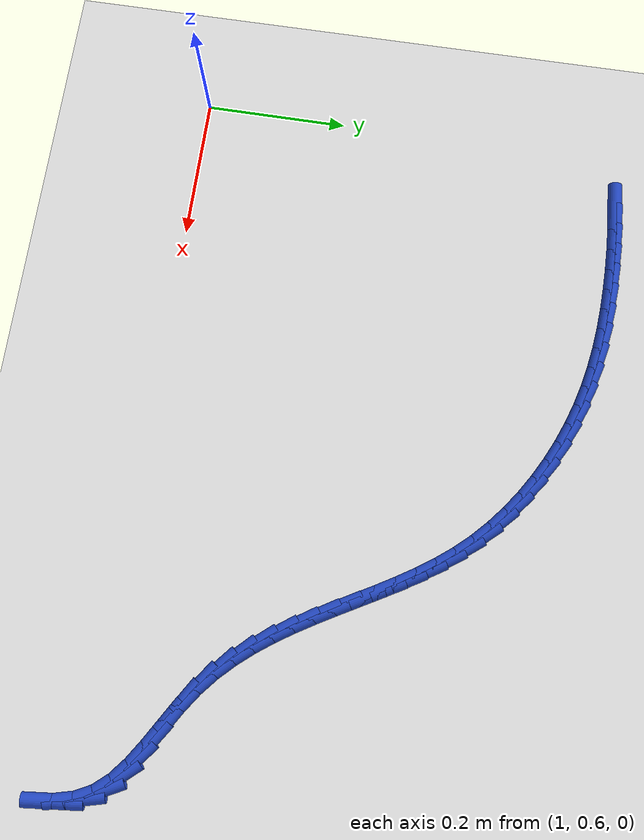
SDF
<sdf version="1.6">
 <world name="default">
  <model name="ground_plane">
   <static>1</static>
   <link name="link">
    <collision name="collision">
     <geometry><plane><normal>0 0 1</normal><size>100 100</size></plane></geometry>
     <surface><friction><ode><mu>100</mu><mu2>50</mu2></ode></friction></surface>
    </collision>
    <visual name="visual">
     <cast_shadows>0</cast_shadows>
     <geometry><plane><normal>0 0 1</normal><size>100 100</size></plane></geometry>
     <material>
      <script><uri>file://media/materials/scripts/gazebo.material</uri><name>Gazebo/WhiteGlow</name></script>
     </material>
    </visual>
   </link>
  </model>
  <model name="line">
   <link name="link_59">
    <pose>1.081388097800081 1.2055630159555188 0.01 0 1.57 0.08266332678488861</pose>
    <collision name="collision">
     <geometry><cylinder><radius>0.01</radius><length>0.08</length></cylinder></geometry>
    </collision>
    <visual name="visual">
     <material>
      <script><name>Gazebo/Blue</name><uri>file://media/materials/scripts/gazebo.material</uri></script>
     </material>
     <geometry><cylinder><radius>0.01</radius><length>0.08</length></cylinder></geometry>
    </visual>
   </link>
   <link name="link_60">
    <pose>1.1122554132911793 1.2081204387472564 0.01 0 1.57 0.0492057576129428</pose>
    <collision name="collision">
     <geometry><cylinder><radius>0.01</radius><length>0.08</length></cylinder></geometry>
    </collision>
    <visual name="visual">
     <material>
      <script><name>Gazebo/Blue</name><uri>file://media/materials/scripts/gazebo.material</uri></script>
     </material>
     <geometry><cylinder><radius>0.01</radius><length>0.08</length></cylinder></geometry>
    </visual>
   </link>
   <link name="link_61">
    <pose>1.1430983092365512 1.2096393128431242 0.01 0 1.57 0.018725478846581253</pose>
    <collision name="collision">
     <geometry><cylinder><radius>0.01</radius><length>0.08</length></cylinder></geometry>
    </collision>
    <visual name="visual">
     <material>
      <script><name>Gazebo/Blue</name><uri>file://media/materials/scripts/gazebo.material</uri></script>
     </material>
     <geometry><cylinder><radius>0.01</radius><length>0.08</length></cylinder></geometry>
    </visual>
   </link>
   <link name="link_62">
    <pose>1.173782432046905 1.210213954902151 0.01 0 1.57 -0.009177796634765499</pose>
    <collision name="collision">
     <geometry><cylinder><radius>0.01</radius><length>0.08</length></cylinder></geometry>
    </collision>
    <visual name="visual">
     <material>
      <script><name>Gazebo/Blue</name><uri>file://media/materials/scripts/gazebo.material</uri></script>
     </material>
     <geometry><cylinder><radius>0.01</radius><length>0.08</length></cylinder></geometry>
    </visual>
   </link>
   <link name="link_63">
    <pose>1.2041758548206851 1.2099350024166173 0.01 0 1.57 -0.03832187731914051</pose>
    <collision name="collision">
     <geometry><cylinder><radius>0.01</radius><length>0.08</length></cylinder></geometry>
    </collision>
    <visual name="visual">
     <material>
      <script><name>Gazebo/Blue</name><uri>file://media/materials/scripts/gazebo.material</uri></script>
     </material>
     <geometry><cylinder><radius>0.01</radius><length>0.08</length></cylinder></geometry>
    </visual>
   </link>
   <link name="link_64">
    <pose>1.2342191849503243 1.2087831216788472 0.01 0 1.57 -0.07290484373197678</pose>
    <collision name="collision">
     <geometry><cylinder><radius>0.01</radius><length>0.08</length></cylinder></geometry>
    </collision>
    <visual name="visual">
     <material>
      <script><name>Gazebo/Blue</name><uri>file://media/materials/scripts/gazebo.material</uri></script>
     </material>
     <geometry><cylinder><radius>0.01</radius><length>0.08</length></cylinder></geometry>
    </visual>
   </link>
   <link name="link_65">
    <pose>1.2639362843348296 1.20661275457769 0.01 0 1.57 -0.11309248596938216</pose>
    <collision name="collision">
     <geometry><cylinder><radius>0.01</radius><length>0.08</length></cylinder></geometry>
    </collision>
    <visual name="visual">
     <material>
      <script><name>Gazebo/Blue</name><uri>file://media/materials/scripts/gazebo.material</uri></script>
     </material>
     <geometry><cylinder><radius>0.01</radius><length>0.08</length></cylinder></geometry>
    </visual>
   </link>
   <link name="link_66">
    <pose>1.2933555983820895 1.203271393820525 0.01 0 1.57 -0.1586842238111268</pose>
    <collision name="collision">
     <geometry><cylinder><radius>0.01</radius><length>0.08</length></cylinder></geometry>
    </collision>
    <visual name="visual">
     <material>
      <script><name>Gazebo/Blue</name><uri>file://media/materials/scripts/gazebo.material</uri></script>
     </material>
     <geometry><cylinder><radius>0.01</radius><length>0.08</length></cylinder></geometry>
    </visual>
   </link>
   <link name="link_67">
    <pose>1.3225055724999917 1.1986065321147334 0.01 0 1.57 -0.20930895600061797</pose>
    <collision name="collision">
     <geometry><cylinder><radius>0.01</radius><length>0.08</length></cylinder></geometry>
    </collision>
    <visual name="visual">
     <material>
      <script><name>Gazebo/Blue</name><uri>file://media/materials/scripts/gazebo.material</uri></script>
     </material>
     <geometry><cylinder><radius>0.01</radius><length>0.08</length></cylinder></geometry>
    </visual>
   </link>
   <link name="link_68">
    <pose>1.3514146520964248 1.1924656621676955 0.01 0 1.57 -0.2643771519026189</pose>
    <collision name="collision">
     <geometry><cylinder><radius>0.01</radius><length>0.08</length></cylinder></geometry>
    </collision>
    <visual name="visual">
     <material>
      <script><name>Gazebo/Blue</name><uri>file://media/materials/scripts/gazebo.material</uri></script>
     </material>
     <geometry><cylinder><radius>0.01</radius><length>0.08</length></cylinder></geometry>
    </visual>
   </link>
   <link name="link_69">
    <pose>1.3801099912257777 1.184697433638929 0.01 0 1.57 -0.32176665142718436</pose>
    <collision name="collision">
     <geometry><cylinder><radius>0.01</radius><length>0.08</length></cylinder></geometry>
    </collision>
    <visual name="visual">
     <material>
      <script><name>Gazebo/Blue</name><uri>file://media/materials/scripts/gazebo.material</uri></script>
     </material>
     <geometry><cylinder><radius>0.01</radius><length>0.08</length></cylinder></geometry>
    </visual>
   </link>
   <link name="link_70">
    <pose>1.4085414026123495 1.1752197879947905 0.01 0 1.57 -0.3793601810932405</pose>
    <collision name="collision">
     <geometry><cylinder><radius>0.01</radius><length>0.08</length></cylinder></geometry>
    </collision>
    <visual name="visual">
     <material>
      <script><name>Gazebo/Blue</name><uri>file://media/materials/scripts/gazebo.material</uri></script>
     </material>
     <geometry><cylinder><radius>0.01</radius><length>0.08</length></cylinder></geometry>
    </visual>
   </link>
   <link name="link_71">
    <pose>1.436538900280601 1.1640579970043168 0.01 0 1.57 -0.4376032993258086</pose>
    <collision name="collision">
     <geometry><cylinder><radius>0.01</radius><length>0.08</length></cylinder></geometry>
    </collision>
    <visual name="visual">
     <material>
      <script><name>Gazebo/Blue</name><uri>file://media/materials/scripts/gazebo.material</uri></script>
     </material>
     <geometry><cylinder><radius>0.01</radius><length>0.08</length></cylinder></geometry>
    </visual>
   </link>
   <link name="link_72">
    <pose>1.4639222023772234 1.1512465567409733 0.01 0 1.57 -0.4971294727617896</pose>
    <collision name="collision">
     <geometry><cylinder><radius>0.01</radius><length>0.08</length></cylinder></geometry>
    </collision>
    <visual name="visual">
     <material>
      <script><name>Gazebo/Blue</name><uri>file://media/materials/scripts/gazebo.material</uri></script>
     </material>
     <geometry><cylinder><radius>0.01</radius><length>0.08</length></cylinder></geometry>
    </visual>
   </link>
   <link name="link_73">
    <pose>1.490511027048909 1.1368199632782268 0.01 0 1.57 -0.5585560715792379</pose>
    <collision name="collision">
     <geometry><cylinder><radius>0.01</radius><length>0.08</length></cylinder></geometry>
    </collision>
    <visual name="visual">
     <material>
      <script><name>Gazebo/Blue</name><uri>file://media/materials/scripts/gazebo.material</uri></script>
     </material>
     <geometry><cylinder><radius>0.01</radius><length>0.08</length></cylinder></geometry>
    </visual>
   </link>
   <link name="link_74">
    <pose>1.5161250924423484 1.1208127126895429 0.01 0 1.57 -0.6224842481481458</pose>
    <collision name="collision">
     <geometry><cylinder><radius>0.01</radius><length>0.08</length></cylinder></geometry>
    </collision>
    <visual name="visual">
     <material>
      <script><name>Gazebo/Blue</name><uri>file://media/materials/scripts/gazebo.material</uri></script>
     </material>
     <geometry><cylinder><radius>0.01</radius><length>0.08</length></cylinder></geometry>
    </visual>
   </link>
   <link name="link_75">
    <pose>1.540584116704232 1.1032593010483884 0.01 0 1.57 -0.6894917771300096</pose>
    <collision name="collision">
     <geometry><cylinder><radius>0.01</radius><length>0.08</length></cylinder></geometry>
    </collision>
    <visual name="visual">
     <material>
      <script><name>Gazebo/Blue</name><uri>file://media/materials/scripts/gazebo.material</uri></script>
     </material>
     <geometry><cylinder><radius>0.01</radius><length>0.08</length></cylinder></geometry>
    </visual>
   </link>
   <link name="link_76">
    <pose>1.5637078179812511 1.0841942244282288 0.01 0 1.57 -0.7601166645345392</pose>
    <collision name="collision">
     <geometry><cylinder><radius>0.01</radius><length>0.08</length></cylinder></geometry>
    </collision>
    <visual name="visual">
     <material>
      <script><name>Gazebo/Blue</name><uri>file://media/materials/scripts/gazebo.material</uri></script>
     </material>
     <geometry><cylinder><radius>0.01</radius><length>0.08</length></cylinder></geometry>
    </visual>
   </link>
   <link name="link_77">
    <pose>1.5853159144200974 1.0636519789025307 0.01 0 1.57 -0.834619941402077</pose>
    <collision name="collision">
     <geometry><cylinder><radius>0.01</radius><length>0.08</length></cylinder></geometry>
    </collision>
    <visual name="visual">
     <material>
      <script><name>Gazebo/Blue</name><uri>file://media/materials/scripts/gazebo.material</uri></script>
     </material>
     <geometry><cylinder><radius>0.01</radius><length>0.08</length></cylinder></geometry>
    </visual>
   </link>
   <link name="link_78">
    <pose>1.60523414127643 1.0416696657538007 0.01 0 1.57 -0.9057533383602213</pose>
    <collision name="collision">
     <geometry><cylinder><radius>0.01</radius><length>0.08</length></cylinder></geometry>
    </collision>
    <visual name="visual">
     <material>
      <script><name>Gazebo/Blue</name><uri>file://media/materials/scripts/gazebo.material</uri></script>
     </material>
     <geometry><cylinder><radius>0.01</radius><length>0.08</length></cylinder></geometry>
    </visual>
   </link>
   <link name="link_79">
    <pose>1.6235010295329835 1.0183765197716845 0.01 0 1.57 -0.9637492921909827</pose>
    <collision name="collision">
     <geometry><cylinder><radius>0.01</radius><length>0.08</length></cylinder></geometry>
    </collision>
    <visual name="visual">
     <material>
      <script><name>Gazebo/Blue</name><uri>file://media/materials/scripts/gazebo.material</uri></script>
     </material>
     <geometry><cylinder><radius>0.01</radius><length>0.08</length></cylinder></geometry>
    </visual>
   </link>
   <link name="link_80">
    <pose>1.6404199066402994 0.9940164238526844 0.01 0 1.57 -1.0077599899585696</pose>
    <collision name="collision">
     <geometry><cylinder><radius>0.01</radius><length>0.08</length></cylinder></geometry>
    </collision>
    <visual name="visual">
     <material>
      <script><name>Gazebo/Blue</name><uri>file://media/materials/scripts/gazebo.material</uri></script>
     </material>
     <geometry><cylinder><radius>0.01</radius><length>0.08</length></cylinder></geometry>
    </visual>
   </link>
   <link name="link_81">
    <pose>1.6563106733877127 0.9688404366004896 0.01 0 1.57 -1.0378926720717532</pose>
    <collision name="collision">
     <geometry><cylinder><radius>0.01</radius><length>0.08</length></cylinder></geometry>
    </collision>
    <visual name="visual">
     <material>
      <script><name>Gazebo/Blue</name><uri>file://media/materials/scripts/gazebo.material</uri></script>
     </material>
     <geometry><cylinder><radius>0.01</radius><length>0.08</length></cylinder></geometry>
    </visual>
   </link>
   <link name="link_82">
    <pose>1.6714932305645602 0.9430996166187912 0.01 0 1.57 -1.0543768160414884</pose>
    <collision name="collision">
     <geometry><cylinder><radius>0.01</radius><length>0.08</length></cylinder></geometry>
    </collision>
    <visual name="visual">
     <material>
      <script><name>Gazebo/Blue</name><uri>file://media/materials/scripts/gazebo.material</uri></script>
     </material>
     <geometry><cylinder><radius>0.01</radius><length>0.08</length></cylinder></geometry>
    </visual>
   </link>
   <link name="link_83">
    <pose>1.6862874789601767 0.9170450225112783 0.01 0 1.57 -1.0573936943203923</pose>
    <collision name="collision">
     <geometry><cylinder><radius>0.01</radius><length>0.08</length></cylinder></geometry>
    </collision>
    <visual name="visual">
     <material>
      <script><name>Gazebo/Blue</name><uri>file://media/materials/scripts/gazebo.material</uri></script>
     </material>
     <geometry><cylinder><radius>0.01</radius><length>0.08</length></cylinder></geometry>
    </visual>
   </link>
   <link name="link_84">
    <pose>1.7010133193638994 0.8909277128816412 0.01 0 1.57 -1.0469882338466296</pose>
    <collision name="collision">
     <geometry><cylinder><radius>0.01</radius><length>0.08</length></cylinder></geometry>
    </collision>
    <visual name="visual">
     <material>
      <script><name>Gazebo/Blue</name><uri>file://media/materials/scripts/gazebo.material</uri></script>
     </material>
     <geometry><cylinder><radius>0.01</radius><length>0.08</length></cylinder></geometry>
    </visual>
   </link>
   <link name="link_85">
    <pose>1.7159906525650641 0.8649987463335692 0.01 0 1.57 -1.0230536762383615</pose>
    <collision name="collision">
     <geometry><cylinder><radius>0.01</radius><length>0.08</length></cylinder></geometry>
    </collision>
    <visual name="visual">
     <material>
      <script><name>Gazebo/Blue</name><uri>file://media/materials/scripts/gazebo.material</uri></script>
     </material>
     <geometry><cylinder><radius>0.01</radius><length>0.08</length></cylinder></geometry>
    </visual>
   </link>
   <link name="link_86">
    <pose>1.7315393793530063 0.8395091814707529 0.01 0 1.57 -0.9853864887902611</pose>
    <collision name="collision">
     <geometry><cylinder><radius>0.01</radius><length>0.08</length></cylinder></geometry>
    </collision>
    <visual name="visual">
     <material>
      <script><name>Gazebo/Blue</name><uri>file://media/materials/scripts/gazebo.material</uri></script>
     </material>
     <geometry><cylinder><radius>0.01</radius><length>0.08</length></cylinder></geometry>
    </visual>
   </link>
   <link name="link_87">
    <pose>1.747979400517062 0.8147100768968821 0.01 0 1.57 -0.933818010572184</pose>
    <collision name="collision">
     <geometry><cylinder><radius>0.01</radius><length>0.08</length></cylinder></geometry>
    </collision>
    <visual name="visual">
     <material>
      <script><name>Gazebo/Blue</name><uri>file://media/materials/scripts/gazebo.material</uri></script>
     </material>
     <geometry><cylinder><radius>0.01</radius><length>0.08</length></cylinder></geometry>
    </visual>
   </link>
   <link name="link_88">
    <pose>1.7656306168465674 0.7908524912156464 0.01 0 1.57 -0.8684306845122894</pose>
    <collision name="collision">
     <geometry><cylinder><radius>0.01</radius><length>0.08</length></cylinder></geometry>
    </collision>
    <visual name="visual">
     <material>
      <script><name>Gazebo/Blue</name><uri>file://media/materials/scripts/gazebo.material</uri></script>
     </material>
     <geometry><cylinder><radius>0.01</radius><length>0.08</length></cylinder></geometry>
    </visual>
   </link>
   <link name="link_89">
    <pose>1.784812929130858 0.7681874830307354 0.01 0 1.57 -0.7898488374950351</pose>
    <collision name="collision">
     <geometry><cylinder><radius>0.01</radius><length>0.08</length></cylinder></geometry>
    </collision>
    <visual name="visual">
     <material>
      <script><name>Gazebo/Blue</name><uri>file://media/materials/scripts/gazebo.material</uri></script>
     </material>
     <geometry><cylinder><radius>0.01</radius><length>0.08</length></cylinder></geometry>
    </visual>
   </link>
   <link name="link_90">
    <pose>1.8058462381592704 0.7469661109458396 0.01 0 1.57 -0.6995471476976406</pose>
    <collision name="collision">
     <geometry><cylinder><radius>0.01</radius><length>0.08</length></cylinder></geometry>
    </collision>
    <visual name="visual">
     <material>
      <script><name>Gazebo/Blue</name><uri>file://media/materials/scripts/gazebo.material</uri></script>
     </material>
     <geometry><cylinder><radius>0.01</radius><length>0.08</length></cylinder></geometry>
    </visual>
   </link>
   <link name="link_91">
    <pose>1.82905044472114 0.7274394335646489 0.01 0 1.57 -0.6044299847107718</pose>
    <collision name="collision">
     <geometry><cylinder><radius>0.01</radius><length>0.08</length></cylinder></geometry>
    </collision>
    <visual name="visual">
     <material>
      <script><name>Gazebo/Blue</name><uri>file://media/materials/scripts/gazebo.material</uri></script>
     </material>
     <geometry><cylinder><radius>0.01</radius><length>0.08</length></cylinder></geometry>
    </visual>
   </link>
   <link name="link_92">
    <pose>1.8546221639632574 0.7097780691895152 0.01 0 1.57 -0.5440812612256852</pose>
    <collision name="collision">
     <geometry><cylinder><radius>0.01</radius><length>0.08</length></cylinder></geometry>
    </collision>
    <visual name="visual">
     <material>
      <script><name>Gazebo/Blue</name><uri>file://media/materials/scripts/gazebo.material</uri></script>
     </material>
     <geometry><cylinder><radius>0.01</radius><length>0.08</length></cylinder></geometry>
    </visual>
   </link>
   <link name="link_93">
    <pose>1.881647440084232 0.6934280208319576 0.01 0 1.57 -0.5346875715910988</pose>
    <collision name="collision">
     <geometry><cylinder><radius>0.01</radius><length>0.08</length></cylinder></geometry>
    </collision>
    <visual name="visual">
     <material>
      <script><name>Gazebo/Blue</name><uri>file://media/materials/scripts/gazebo.material</uri></script>
     </material>
     <geometry><cylinder><radius>0.01</radius><length>0.08</length></cylinder></geometry>
    </visual>
   </link>
   <link name="link_94">
    <pose>1.9086241836174194 0.6774515513673142 0.01 0 1.57 -0.5769458337168911</pose>
    <collision name="collision">
     <geometry><cylinder><radius>0.01</radius><length>0.08</length></cylinder></geometry>
    </collision>
    <visual name="visual">
     <material>
      <script><name>Gazebo/Blue</name><uri>file://media/materials/scripts/gazebo.material</uri></script>
     </material>
     <geometry><cylinder><radius>0.01</radius><length>0.08</length></cylinder></geometry>
    </visual>
   </link>
   <link name="link_95">
    <pose>1.9340449361657794 0.6609074205997603 0.01 0 1.57 -0.6792841436933819</pose>
    <collision name="collision">
     <geometry><cylinder><radius>0.01</radius><length>0.08</length></cylinder></geometry>
    </collision>
    <visual name="visual">
     <material>
      <script><name>Gazebo/Blue</name><uri>file://media/materials/scripts/gazebo.material</uri></script>
     </material>
     <geometry><cylinder><radius>0.01</radius><length>0.08</length></cylinder></geometry>
    </visual>
   </link>
   <link name="link_96">
    <pose>1.9564022393322724 0.642854388333472 0.01 0 1.57 -0.8562329423435958</pose>
    <collision name="collision">
     <geometry><cylinder><radius>0.01</radius><length>0.08</length></cylinder></geometry>
    </collision>
    <visual name="visual">
     <material>
      <script><name>Gazebo/Blue</name><uri>file://media/materials/scripts/gazebo.material</uri></script>
     </material>
     <geometry><cylinder><radius>0.01</radius><length>0.08</length></cylinder></geometry>
    </visual>
   </link>
   <link name="link_97">
    <pose>1.9741886347198576 0.6223512143726257 0.01 0 1.57 -1.104158098291958</pose>
    <collision name="collision">
     <geometry><cylinder><radius>0.01</radius><length>0.08</length></cylinder></geometry>
    </collision>
    <visual name="visual">
     <material>
      <script><name>Gazebo/Blue</name><uri>file://media/materials/scripts/gazebo.material</uri></script>
     </material>
     <geometry><cylinder><radius>0.01</radius><length>0.08</length></cylinder></geometry>
    </visual>
   </link>
   <link name="link_98">
    <pose>1.9861519404200083 0.5986024283629915 0.01 0 1.57 -1.3250685593436846</pose>
    <collision name="collision">
     <geometry><cylinder><radius>0.01</radius><length>0.08</length></cylinder></geometry>
    </collision>
    <visual name="visual">
     <material>
      <script><name>Gazebo/Blue</name><uri>file://media/materials/scripts/gazebo.material</uri></script>
     </material>
     <geometry><cylinder><radius>0.01</radius><length>0.08</length></cylinder></geometry>
    </visual>
   </link>
   <link name="link_99">
    <pose>1.9928607714020714 0.5718522846582768 0.01 0 1.57 -1.474249109801703</pose>
    <collision name="collision">
     <geometry><cylinder><radius>0.01</radius><length>0.08</length></cylinder></geometry>
    </collision>
    <visual name="visual">
     <material>
      <script><name>Gazebo/Blue</name><uri>file://media/materials/scripts/gazebo.material</uri></script>
     </material>
     <geometry><cylinder><radius>0.01</radius><length>0.08</length></cylinder></geometry>
    </visual>
   </link>
  </model>
 </world>
</sdf>
